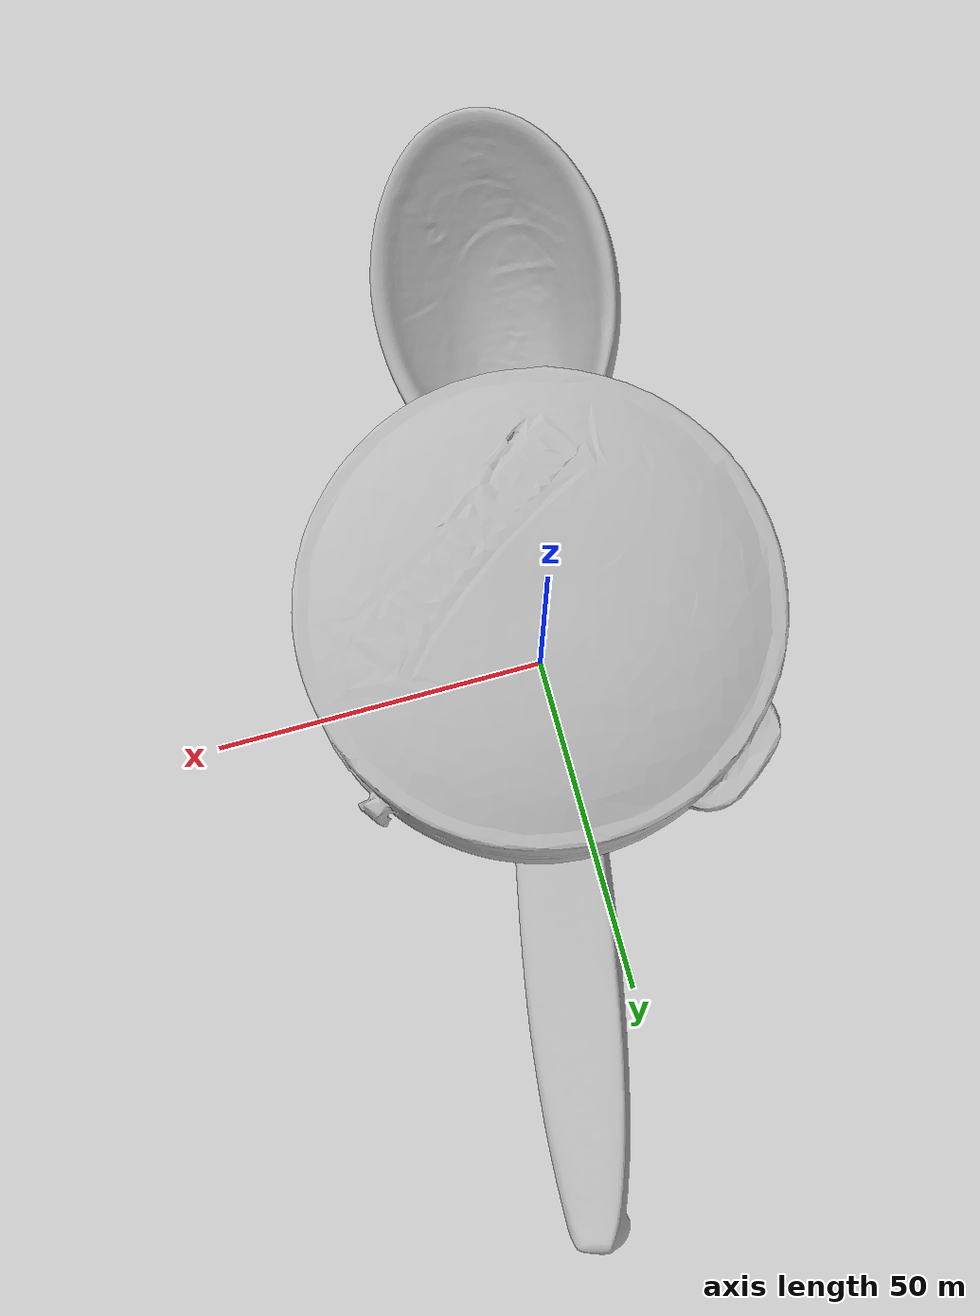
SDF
<sdf version="1.4">
 <world name="default">
  <light name="light1" type="point">
   <pose>0 0 1 0 0 0</pose>
   <diffuse>3 3 3 1</diffuse>
   <specular>3 3 3 1</specular>
  </light>
  <light name="light2" type="point">
   <pose>0 0.5 2 0 0 0</pose>
   <diffuse>1 1 1 1</diffuse>
   <specular>1 1 1 1</specular>
  </light>
  <light name="light3" type="point">
   <pose>0 0.5 2 0 0 0</pose>
   <diffuse>3 3 3 1</diffuse>
   <specular>3 3 3 1</specular>
  </light>
  <scene><ambient>0.7 0.7 0.7</ambient></scene>
  <model name="bottle1">
   <link name="link_bottle1">
    <collision name="default">
     <geometry>
      <mesh><uri>model://green_arrow/collision_meshes/collision.obj</uri><scale>1.0 1.0 1.0</scale></mesh>
     </geometry>
     <surface>
      <friction><ode><mu>0.5</mu><mu2>0.5</mu2></ode></friction>
      <contact><ode><max_vel>0</max_vel><min_depth>0.0001</min_depth><kp>1e8</kp></ode></contact>
     </surface>
    </collision>
    <visual name="default">
     <geometry>
      <mesh><uri>model://green_arrow/visual_meshes/visual.dae</uri><scale>1.0 1.0 1.0</scale></mesh>
     </geometry>
    </visual>
    <inertial>
     <mass>0.31872013211250305</mass>
     <pose>0.0005358478520065546 -0.0008270691032521427 0.002210969803854823 -0.06332250060756175 0.012985582117300467 0.6741007804522225</pose>
     <inertia>
      <ixx>0.00023120124</ixx>
      <iyy>0.000230851</iyy>
      <izz>0.0001492862</izz>
      <ixy>0</ixy>
      <ixz>0</ixz>
      <iyz>0</iyz>
     </inertia>
    </inertial>
   </link>
   <pose>-0.014788905158638954 -0.24819785356521606 0.039149921387434006 0.02641342676890197 0.025253065473246832 -0.053606891108778504</pose>
  </model>
  <model name="bottle2">
   <link name="link_bottle2">
    <collision name="default">
     <geometry>
      <mesh><uri>model://pigeon/collision_meshes/collision.obj</uri><scale>1.0 1.0 1.0</scale></mesh>
     </geometry>
     <surface>
      <friction><ode><mu>0.5</mu><mu2>0.5</mu2></ode></friction>
      <contact><ode><max_vel>0</max_vel><min_depth>0.0001</min_depth><kp>1e8</kp></ode></contact>
     </surface>
    </collision>
    <visual name="default">
     <geometry><mesh><uri>model://pigeon/visual_meshes/visual.dae</uri><scale>1.0 1.0 1.0</scale></mesh></geometry>
    </visual>
    <inertial>
     <mass>0.5279804468154907</mass>
     <pose>-9.675472392700613e-05 -0.0001927677367348224 -0.01593620702624321 -0.011704407495178063 -0.0012978199512556723 -0.04198835484465517</pose>
     <inertia>
      <ixx>0.0013198232</ixx>
      <iyy>0.0014089285</iyy>
      <izz>0.000271492</izz>
      <ixy>0</ixy>
      <ixz>0</ixz>
      <iyz>0</iyz>
     </inertia>
    </inertial>
   </link>
   <pose>0.2542155385017395 0.17107480764389038 0.09864480793476105 2.3864840762793242e-05 3.0374006106413003e-06 3.001989384061004</pose>
  </model>
  <model name="silverware1">
   <link name="link_silverware1">
    <collision name="default">
     <geometry>
      <mesh><uri>model://doraemon_spoon/collision_meshes/collision.obj</uri><scale>1.0 1.0 1.0</scale></mesh>
     </geometry>
     <surface>
      <friction><ode><mu>0.5</mu><mu2>0.5</mu2></ode></friction>
      <contact><ode><max_vel>0</max_vel><min_depth>0.0001</min_depth><kp>1e8</kp></ode></contact>
     </surface>
    </collision>
    <visual name="default">
     <geometry>
      <mesh><uri>model://doraemon_spoon/visual_meshes/visual.dae</uri><scale>1.0 1.0 1.0</scale></mesh>
     </geometry>
    </visual>
    <inertial>
     <mass>0.014849366620182991</mass>
     <pose>-0.022165074944496155 -0.0006374582299031317 -0.0033325457479804754 -0.009146985479672626 0.07380416127774835 -0.014123827206003371</pose>
     <inertia>
      <ixx>1.1631438e-06</ixx>
      <iyy>3.3035012e-05</iyy>
      <izz>3.359665e-05</izz>
      <ixy>0</ixy>
      <ixz>0</ixz>
      <iyz>0</iyz>
     </inertia>
    </inertial>
   </link>
   <pose>0.07308436930179596 0.033329859375953674 0.014739428646862507 0.27878621897680683 -0.010335808514162556 1.4035216202518785</pose>
  </model>
  <model name="stationery1">
   <link name="link_stationery1">
    <collision name="default">
     <geometry>
      <mesh><uri>model://correction_fuid/collision_meshes/collision.obj</uri><scale>1.0 1.0 1.0</scale></mesh>
     </geometry>
     <surface>
      <friction><ode><mu>0.5</mu><mu2>0.5</mu2></ode></friction>
      <contact><ode><max_vel>0</max_vel><min_depth>0.0001</min_depth><kp>1e8</kp></ode></contact>
     </surface>
    </collision>
    <visual name="default">
     <geometry>
      <mesh><uri>model://correction_fuid/visual_meshes/visual.dae</uri><scale>1.0 1.0 1.0</scale></mesh>
     </geometry>
    </visual>
    <inertial>
     <mass>0.03422689810395241</mass>
     <pose>-0.00012557733862195164 -0.0009722901741042733 -0.001618212671019137 -0.010846609605282003 0.019488228935667613 -0.015992456651572746</pose>
     <inertia>
      <ixx>3.3149332e-05</ixx>
      <iyy>2.0062398e-06</iyy>
      <izz>3.4012115e-05</izz>
      <ixy>0</ixy>
      <ixz>0</ixz>
      <iyz>0</iyz>
     </inertia>
    </inertial>
   </link>
   <pose>0.30249449610710144 0.12781663239002228 0.007912646047770977 -3.09167175983403 0.022956796116979233 2.51689307516223</pose>
  </model>
  <model name="bowl1">
   <link name="link_bowl1">
    <collision name="default">
     <geometry>
      <mesh><uri>model://doraemon_bowl/collision_meshes/collision.obj</uri><scale>1.0 1.0 1.0</scale></mesh>
     </geometry>
     <surface>
      <friction><ode><mu>0.5</mu><mu2>0.5</mu2></ode></friction>
      <contact><ode><max_vel>0</max_vel><min_depth>0.0001</min_depth><kp>1e8</kp></ode></contact>
     </surface>
    </collision>
    <visual name="default">
     <geometry>
      <mesh><uri>model://doraemon_bowl/visual_meshes/visual.dae</uri><scale>1.0 1.0 1.0</scale></mesh>
     </geometry>
    </visual>
    <inertial>
     <mass>0.10659078508615494</mass>
     <pose>-0.014629560522735119 0.00048571196384727955 -0.002086488762870431 -0.00509398386316645 -0.10568401530986889 -0.026426397124795446</pose>
     <inertia>
      <ixx>0.00014780516</ixx>
      <iyy>0.00019451023</iyy>
      <izz>0.00028617028</izz>
      <ixy>0</ixy>
      <ixz>0</ixz>
      <iyz>0</iyz>
     </inertia>
    </inertial>
   </link>
   <pose>0.01180195901542902 -0.3441098630428314 0.025905728340148926 0.008574650140065932 0.006343181018344981 -2.4972509273815335</pose>
  </model>
  <model name="cup1">
   <link name="link_cup1">
    <collision name="default">
     <geometry>
      <mesh><uri>model://doraemon_cup/collision_meshes/collision.obj</uri><scale>1.0 1.0 1.0</scale></mesh>
     </geometry>
     <surface>
      <friction><ode><mu>0.5</mu><mu2>0.5</mu2></ode></friction>
      <contact><ode><max_vel>0</max_vel><min_depth>0.0001</min_depth><kp>1e8</kp></ode></contact>
     </surface>
    </collision>
    <visual name="default">
     <geometry>
      <mesh><uri>model://doraemon_cup/visual_meshes/visual.dae</uri><scale>1.0 1.0 1.0</scale></mesh>
     </geometry>
    </visual>
    <inertial>
     <mass>0.07019124925136566</mass>
     <pose>-0.0003292977053206414 -0.0016633619088679552 -0.0022522560320794582 0.19498543632694942 -0.013693723781048914 -0.3205469926711019</pose>
     <inertia>
      <ixx>9.599299e-05</ixx>
      <iyy>9.2830705e-05</iyy>
      <izz>7.5864096e-05</izz>
      <ixy>0</ixy>
      <ixz>0</ixz>
      <iyz>0</iyz>
     </inertia>
    </inertial>
   </link>
   <pose>0.02267606556415558 -0.32500356435775757 0.050083089619874954 -0.01566537370663486 -0.012069700462991021 0.9850230133714997</pose>
  </model>
  <model name="plate1">
   <link name="link_plate1">
    <collision name="default">
     <geometry>
      <mesh><uri>model://hello_kitty_plate/collision_meshes/collision.obj</uri><scale>1.0 1.0 1.0</scale></mesh>
     </geometry>
     <surface>
      <friction><ode><mu>0.5</mu><mu2>0.5</mu2></ode></friction>
      <contact><ode><max_vel>0</max_vel><min_depth>0.0001</min_depth><kp>1e8</kp></ode></contact>
     </surface>
    </collision>
    <visual name="default">
     <geometry>
      <mesh><uri>model://hello_kitty_plate/visual_meshes/visual.dae</uri><scale>1.0 1.0 1.0</scale></mesh>
     </geometry>
    </visual>
    <inertial>
     <mass>0.03849242627620697</mass>
     <pose>0.007314295973628759 0.00028937432216480374 -0.0027947183698415756 -0.00010431794154861864 -0.007054443662422379 -0.014449020506613262</pose>
     <inertia>
      <ixx>7.4224925e-05</ixx>
      <iyy>0.00014008483</iyy>
      <izz>0.00021270475</izz>
      <ixy>0</ixy>
      <ixz>0</ixz>
      <iyz>0</iyz>
     </inertia>
    </inertial>
   </link>
   <pose>-0.00814860500395298 0.2944420278072357 0.008291468024253845 0.0004659167496095691 0.004173534400527722 -1.737482251648891</pose>
  </model>
  <model name="box4">
   <link name="link_box4">
    <collision name="default">
     <geometry>
      <mesh><uri>model://wooden_puzzle2/collision_meshes/collision.obj</uri><scale>1.0 1.0 1.0</scale></mesh>
     </geometry>
     <surface>
      <friction><ode><mu>0.5</mu><mu2>0.5</mu2></ode></friction>
      <contact><ode><max_vel>0</max_vel><min_depth>0.0001</min_depth><kp>1e8</kp></ode></contact>
     </surface>
    </collision>
    <visual name="default">
     <geometry>
      <mesh><uri>model://wooden_puzzle2/visual_meshes/visual.dae</uri><scale>1.0 1.0 1.0</scale></mesh>
     </geometry>
    </visual>
    <inertial>
     <mass>0.023858843371272087</mass>
     <pose>2.7402536943554878e-05 4.997663199901581e-05 6.587122334167361e-05 -0.1920347142936951 0.6112821219690274 -0.6338705729322873</pose>
     <inertia>
      <ixx>4.4351036e-06</ixx>
      <iyy>4.557319e-06</iyy>
      <izz>4.4924864e-06</izz>
      <ixy>0</ixy>
      <ixz>0</ixz>
      <iyz>0</iyz>
     </inertia>
    </inertial>
   </link>
   <pose>0.20172864198684692 0.15910962224006653 0.01691773161292076 0.020848832530045776 0.0007206703748742078 2.0676885383756423</pose>
  </model>
  <physics type="ode">
   <max_contacts>50</max_contacts>
   <ode>
    <solver><type>quick</type><iters>75</iters></solver>
    <constraints>
     <contact_max_correcting_vel>0</contact_max_correcting_vel>
     <contact_surface_layer>0</contact_surface_layer>
    </constraints>
   </ode>
  </physics>
 </world>
</sdf>
